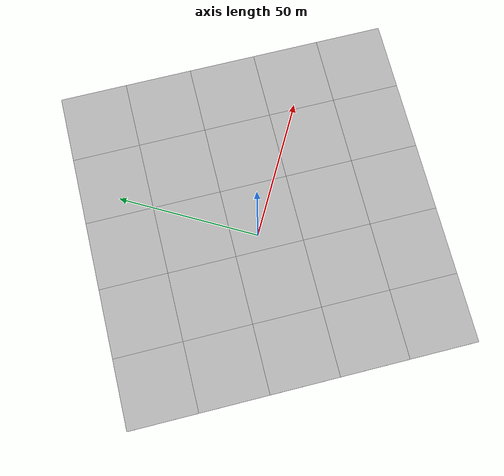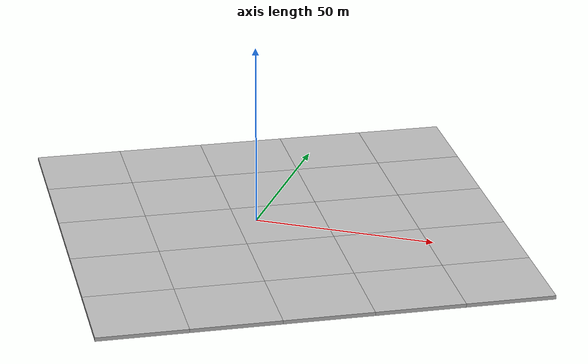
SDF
<sdf version="1.6">
 <world name="vrc_task_1">
  <scene><ambient>0.4 0.4 0.4 1</ambient><background>0.7 0.7 0.7 1</background><shadows>1</shadows></scene>
  <physics name="default_physics" default="0" type="ode">
   <ode>
    <solver>
     <type>quick</type>
     <iters>10</iters>
     <sor>1</sor>
     <use_dynamic_moi_rescaling>0</use_dynamic_moi_rescaling>
    </solver>
    <constraints>
     <cfm>0</cfm>
     <erp>0.2</erp>
     <contact_max_correcting_vel>100</contact_max_correcting_vel>
     <contact_surface_layer>0.001</contact_surface_layer>
    </constraints>
   </ode>
   <max_step_size>0.004</max_step_size>
   <real_time_factor>1</real_time_factor>
   <real_time_update_rate>250</real_time_update_rate>
  </physics>
  <light name="sun" type="directional">
   <pose>0 0 10 0 -0 0</pose>
   <diffuse>0.8 0.8 0.8 1</diffuse>
   <specular>0.2 0.2 0.2 1</specular>
   <attenuation>
    <range>1000</range>
    <constant>0.9</constant>
    <linear>0.01</linear>
    <quadratic>0.001</quadratic>
   </attenuation>
   <direction>-0.5 0.1 -0.9</direction>
  </light>
  <gravity>0 0 -9.8066</gravity>
  <magnetic_field>6e-06 2.3e-05 -4.2e-05</magnetic_field>
  <atmosphere type="adiabatic"/>
  <spherical_coordinates>
   <surface_model>EARTH_WGS84</surface_model>
   <latitude_deg>0</latitude_deg>
   <longitude_deg>0</longitude_deg>
   <elevation>0</elevation>
   <heading_deg>0</heading_deg>
  </spherical_coordinates>
  <model name="map_satellite_1.325292_103.918908_100_100">
   <static>1</static>
   <link name="link">
    <collision name="collision">
     <pose>0 0 -0.5 0 -0 0</pose>
     <geometry><box><size>119.401 119.401 1</size></box></geometry>
    </collision>
    <visual name="visual0_0">
     <pose>-47.7604 47.7604 -0.5 0 -0 1.5708</pose>
     <geometry><box><size>23.8802 23.8802 1</size></box></geometry>
     <material>
      <script>
       <uri>model://map_satellite_1.325292_103.918908_100_100/materials/scripts</uri>
       <uri>model://map_satellite_1.325292_103.918908_100_100/materials/textures</uri>
       <name>map_satellite_1.325292_103.918908_100_100/0_0</name>
      </script>
     </material>
    </visual>
    <visual name="visual0_1">
     <pose>-23.8802 47.7604 -0.5 0 -0 1.5708</pose>
     <geometry><box><size>23.8802 23.8802 1</size></box></geometry>
     <material>
      <script>
       <uri>model://map_satellite_1.325292_103.918908_100_100/materials/scripts</uri>
       <uri>model://map_satellite_1.325292_103.918908_100_100/materials/textures</uri>
       <name>map_satellite_1.325292_103.918908_100_100/0_1</name>
      </script>
     </material>
    </visual>
    <visual name="visual0_2">
     <pose>0 47.7604 -0.5 0 -0 1.5708</pose>
     <geometry><box><size>23.8802 23.8802 1</size></box></geometry>
     <material>
      <script>
       <uri>model://map_satellite_1.325292_103.918908_100_100/materials/scripts</uri>
       <uri>model://map_satellite_1.325292_103.918908_100_100/materials/textures</uri>
       <name>map_satellite_1.325292_103.918908_100_100/0_2</name>
      </script>
     </material>
    </visual>
    <visual name="visual0_3">
     <pose>23.8802 47.7604 -0.5 0 -0 1.5708</pose>
     <geometry><box><size>23.8802 23.8802 1</size></box></geometry>
     <material>
      <script>
       <uri>model://map_satellite_1.325292_103.918908_100_100/materials/scripts</uri>
       <uri>model://map_satellite_1.325292_103.918908_100_100/materials/textures</uri>
       <name>map_satellite_1.325292_103.918908_100_100/0_3</name>
      </script>
     </material>
    </visual>
    <visual name="visual0_4">
     <pose>47.7604 47.7604 -0.5 0 -0 1.5708</pose>
     <geometry><box><size>23.8802 23.8802 1</size></box></geometry>
     <material>
      <script>
       <uri>model://map_satellite_1.325292_103.918908_100_100/materials/scripts</uri>
       <uri>model://map_satellite_1.325292_103.918908_100_100/materials/textures</uri>
       <name>map_satellite_1.325292_103.918908_100_100/0_4</name>
      </script>
     </material>
    </visual>
    <visual name="visual1_0">
     <pose>-47.7604 23.8802 -0.5 0 -0 1.5708</pose>
     <geometry><box><size>23.8802 23.8802 1</size></box></geometry>
     <material>
      <script>
       <uri>model://map_satellite_1.325292_103.918908_100_100/materials/scripts</uri>
       <uri>model://map_satellite_1.325292_103.918908_100_100/materials/textures</uri>
       <name>map_satellite_1.325292_103.918908_100_100/1_0</name>
      </script>
     </material>
    </visual>
    <visual name="visual1_1">
     <pose>-23.8802 23.8802 -0.5 0 -0 1.5708</pose>
     <geometry><box><size>23.8802 23.8802 1</size></box></geometry>
     <material>
      <script>
       <uri>model://map_satellite_1.325292_103.918908_100_100/materials/scripts</uri>
       <uri>model://map_satellite_1.325292_103.918908_100_100/materials/textures</uri>
       <name>map_satellite_1.325292_103.918908_100_100/1_1</name>
      </script>
     </material>
    </visual>
    <visual name="visual1_2">
     <pose>0 23.8802 -0.5 0 -0 1.5708</pose>
     <geometry><box><size>23.8802 23.8802 1</size></box></geometry>
     <material>
      <script>
       <uri>model://map_satellite_1.325292_103.918908_100_100/materials/scripts</uri>
       <uri>model://map_satellite_1.325292_103.918908_100_100/materials/textures</uri>
       <name>map_satellite_1.325292_103.918908_100_100/1_2</name>
      </script>
     </material>
    </visual>
    <visual name="visual1_3">
     <pose>23.8802 23.8802 -0.5 0 -0 1.5708</pose>
     <geometry><box><size>23.8802 23.8802 1</size></box></geometry>
     <material>
      <script>
       <uri>model://map_satellite_1.325292_103.918908_100_100/materials/scripts</uri>
       <uri>model://map_satellite_1.325292_103.918908_100_100/materials/textures</uri>
       <name>map_satellite_1.325292_103.918908_100_100/1_3</name>
      </script>
     </material>
    </visual>
    <visual name="visual1_4">
     <pose>47.7604 23.8802 -0.5 0 -0 1.5708</pose>
     <geometry><box><size>23.8802 23.8802 1</size></box></geometry>
     <material>
      <script>
       <uri>model://map_satellite_1.325292_103.918908_100_100/materials/scripts</uri>
       <uri>model://map_satellite_1.325292_103.918908_100_100/materials/textures</uri>
       <name>map_satellite_1.325292_103.918908_100_100/1_4</name>
      </script>
     </material>
    </visual>
    <visual name="visual2_0">
     <pose>-47.7604 0 -0.5 0 -0 1.5708</pose>
     <geometry><box><size>23.8802 23.8802 1</size></box></geometry>
     <material>
      <script>
       <uri>model://map_satellite_1.325292_103.918908_100_100/materials/scripts</uri>
       <uri>model://map_satellite_1.325292_103.918908_100_100/materials/textures</uri>
       <name>map_satellite_1.325292_103.918908_100_100/2_0</name>
      </script>
     </material>
    </visual>
    <visual name="visual2_1">
     <pose>-23.8802 0 -0.5 0 -0 1.5708</pose>
     <geometry><box><size>23.8802 23.8802 1</size></box></geometry>
     <material>
      <script>
       <uri>model://map_satellite_1.325292_103.918908_100_100/materials/scripts</uri>
       <uri>model://map_satellite_1.325292_103.918908_100_100/materials/textures</uri>
       <name>map_satellite_1.325292_103.918908_100_100/2_1</name>
      </script>
     </material>
    </visual>
    <visual name="visual2_2">
     <pose>0 0 -0.5 0 -0 1.5708</pose>
     <geometry><box><size>23.8802 23.8802 1</size></box></geometry>
     <material>
      <script>
       <uri>model://map_satellite_1.325292_103.918908_100_100/materials/scripts</uri>
       <uri>model://map_satellite_1.325292_103.918908_100_100/materials/textures</uri>
       <name>map_satellite_1.325292_103.918908_100_100/2_2</name>
      </script>
     </material>
    </visual>
    <visual name="visual2_3">
     <pose>23.8802 0 -0.5 0 -0 1.5708</pose>
     <geometry><box><size>23.8802 23.8802 1</size></box></geometry>
     <material>
      <script>
       <uri>model://map_satellite_1.325292_103.918908_100_100/materials/scripts</uri>
       <uri>model://map_satellite_1.325292_103.918908_100_100/materials/textures</uri>
       <name>map_satellite_1.325292_103.918908_100_100/2_3</name>
      </script>
     </material>
    </visual>
    <visual name="visual2_4">
     <pose>47.7604 0 -0.5 0 -0 1.5708</pose>
     <geometry><box><size>23.8802 23.8802 1</size></box></geometry>
     <material>
      <script>
       <uri>model://map_satellite_1.325292_103.918908_100_100/materials/scripts</uri>
       <uri>model://map_satellite_1.325292_103.918908_100_100/materials/textures</uri>
       <name>map_satellite_1.325292_103.918908_100_100/2_4</name>
      </script>
     </material>
    </visual>
    <visual name="visual3_0">
     <pose>-47.7604 -23.8802 -0.5 0 -0 1.5708</pose>
     <geometry><box><size>23.8802 23.8802 1</size></box></geometry>
     <material>
      <script>
       <uri>model://map_satellite_1.325292_103.918908_100_100/materials/scripts</uri>
       <uri>model://map_satellite_1.325292_103.918908_100_100/materials/textures</uri>
       <name>map_satellite_1.325292_103.918908_100_100/3_0</name>
      </script>
     </material>
    </visual>
    <visual name="visual3_1">
     <pose>-23.8802 -23.8802 -0.5 0 -0 1.5708</pose>
     <geometry><box><size>23.8802 23.8802 1</size></box></geometry>
     <material>
      <script>
       <uri>model://map_satellite_1.325292_103.918908_100_100/materials/scripts</uri>
       <uri>model://map_satellite_1.325292_103.918908_100_100/materials/textures</uri>
       <name>map_satellite_1.325292_103.918908_100_100/3_1</name>
      </script>
     </material>
    </visual>
    <visual name="visual3_2">
     <pose>0 -23.8802 -0.5 0 -0 1.5708</pose>
     <geometry><box><size>23.8802 23.8802 1</size></box></geometry>
     <material>
      <script>
       <uri>model://map_satellite_1.325292_103.918908_100_100/materials/scripts</uri>
       <uri>model://map_satellite_1.325292_103.918908_100_100/materials/textures</uri>
       <name>map_satellite_1.325292_103.918908_100_100/3_2</name>
      </script>
     </material>
    </visual>
    <visual name="visual3_3">
     <pose>23.8802 -23.8802 -0.5 0 -0 1.5708</pose>
     <geometry><box><size>23.8802 23.8802 1</size></box></geometry>
     <material>
      <script>
       <uri>model://map_satellite_1.325292_103.918908_100_100/materials/scripts</uri>
       <uri>model://map_satellite_1.325292_103.918908_100_100/materials/textures</uri>
       <name>map_satellite_1.325292_103.918908_100_100/3_3</name>
      </script>
     </material>
    </visual>
    <visual name="visual3_4">
     <pose>47.7604 -23.8802 -0.5 0 -0 1.5708</pose>
     <geometry><box><size>23.8802 23.8802 1</size></box></geometry>
     <material>
      <script>
       <uri>model://map_satellite_1.325292_103.918908_100_100/materials/scripts</uri>
       <uri>model://map_satellite_1.325292_103.918908_100_100/materials/textures</uri>
       <name>map_satellite_1.325292_103.918908_100_100/3_4</name>
      </script>
     </material>
    </visual>
    <visual name="visual4_0">
     <pose>-47.7604 -47.7604 -0.5 0 -0 1.5708</pose>
     <geometry><box><size>23.8802 23.8802 1</size></box></geometry>
     <material>
      <script>
       <uri>model://map_satellite_1.325292_103.918908_100_100/materials/scripts</uri>
       <uri>model://map_satellite_1.325292_103.918908_100_100/materials/textures</uri>
       <name>map_satellite_1.325292_103.918908_100_100/4_0</name>
      </script>
     </material>
    </visual>
    <visual name="visual4_1">
     <pose>-23.8802 -47.7604 -0.5 0 -0 1.5708</pose>
     <geometry><box><size>23.8802 23.8802 1</size></box></geometry>
     <material>
      <script>
       <uri>model://map_satellite_1.325292_103.918908_100_100/materials/scripts</uri>
       <uri>model://map_satellite_1.325292_103.918908_100_100/materials/textures</uri>
       <name>map_satellite_1.325292_103.918908_100_100/4_1</name>
      </script>
     </material>
    </visual>
    <visual name="visual4_2">
     <pose>0 -47.7604 -0.5 0 -0 1.5708</pose>
     <geometry><box><size>23.8802 23.8802 1</size></box></geometry>
     <material>
      <script>
       <uri>model://map_satellite_1.325292_103.918908_100_100/materials/scripts</uri>
       <uri>model://map_satellite_1.325292_103.918908_100_100/materials/textures</uri>
       <name>map_satellite_1.325292_103.918908_100_100/4_2</name>
      </script>
     </material>
    </visual>
    <visual name="visual4_3">
     <pose>23.8802 -47.7604 -0.5 0 -0 1.5708</pose>
     <geometry><box><size>23.8802 23.8802 1</size></box></geometry>
     <material>
      <script>
       <uri>model://map_satellite_1.325292_103.918908_100_100/materials/scripts</uri>
       <uri>model://map_satellite_1.325292_103.918908_100_100/materials/textures</uri>
       <name>map_satellite_1.325292_103.918908_100_100/4_3</name>
      </script>
     </material>
    </visual>
    <visual name="visual4_4">
     <pose>47.7604 -47.7604 -0.5 0 -0 1.5708</pose>
     <geometry><box><size>23.8802 23.8802 1</size></box></geometry>
     <material>
      <script>
       <uri>model://map_satellite_1.325292_103.918908_100_100/materials/scripts</uri>
       <uri>model://map_satellite_1.325292_103.918908_100_100/materials/textures</uri>
       <name>map_satellite_1.325292_103.918908_100_100/4_4</name>
      </script>
     </material>
    </visual>
   </link>
   <pose>7.0064 0.656517 0 0 -0 0.507998</pose>
  </model>
 </world>
</sdf>
